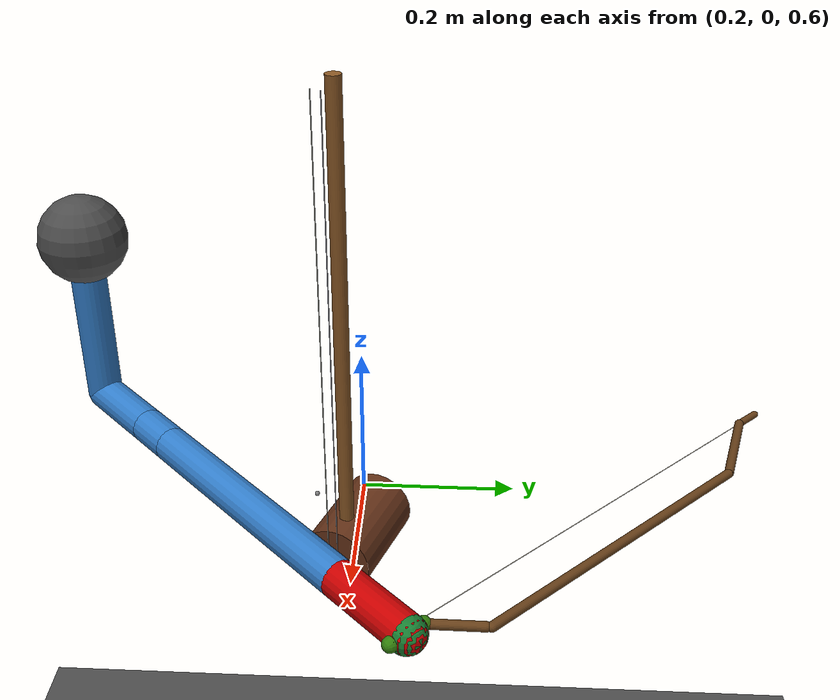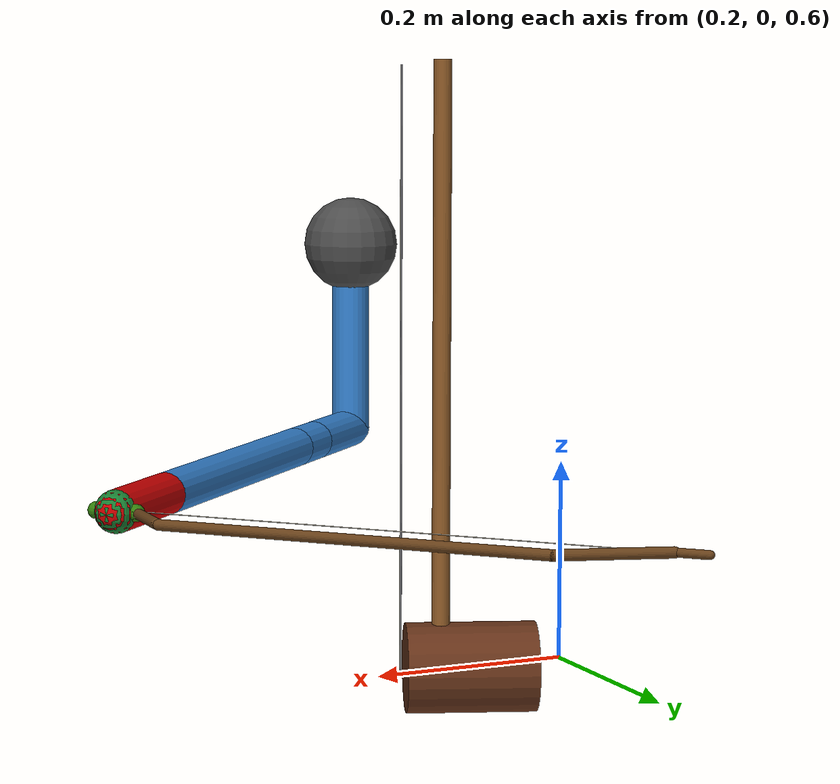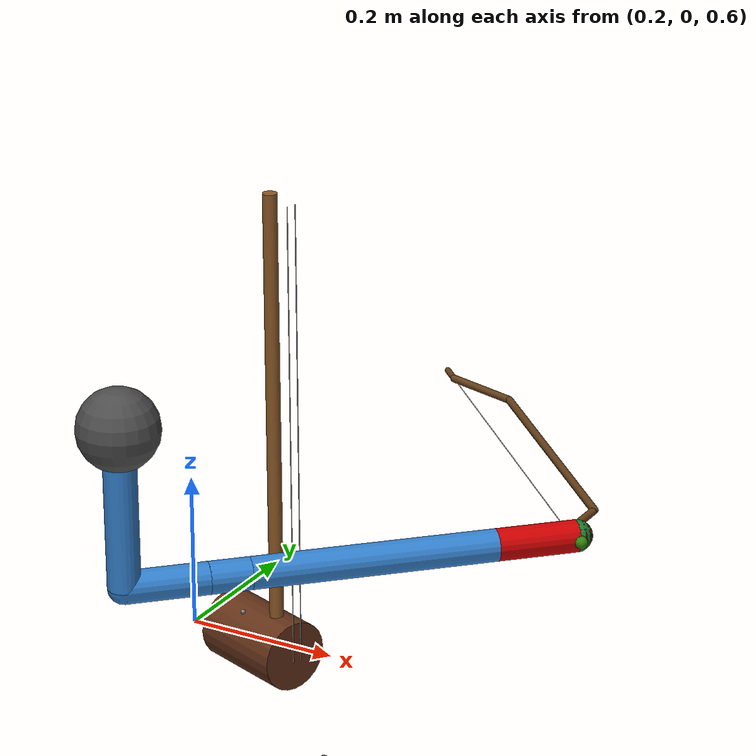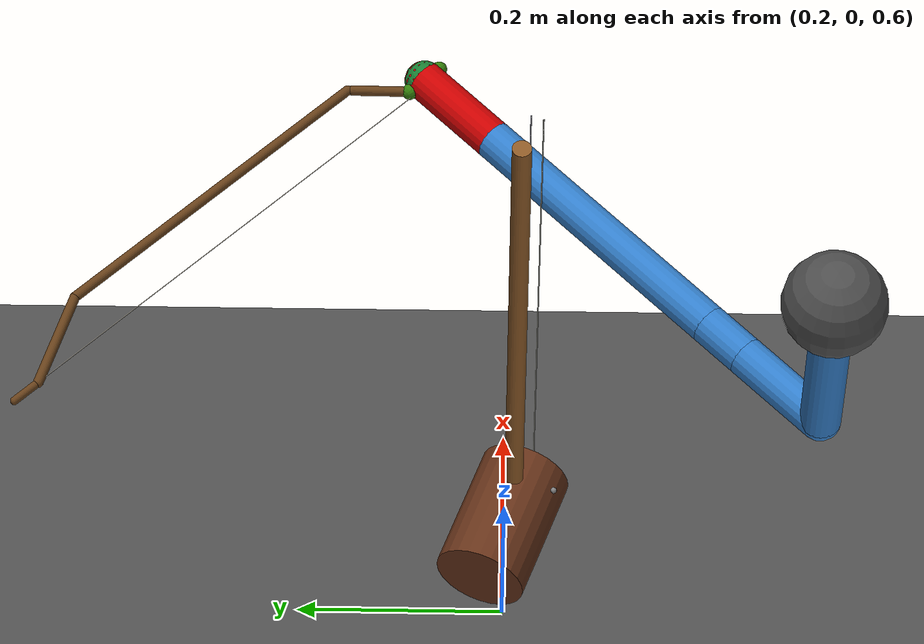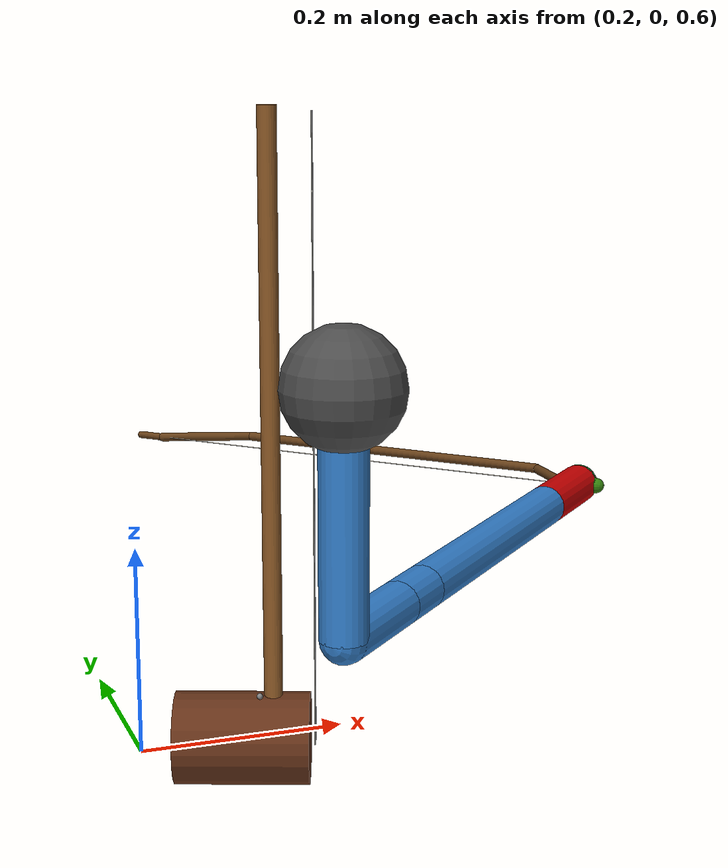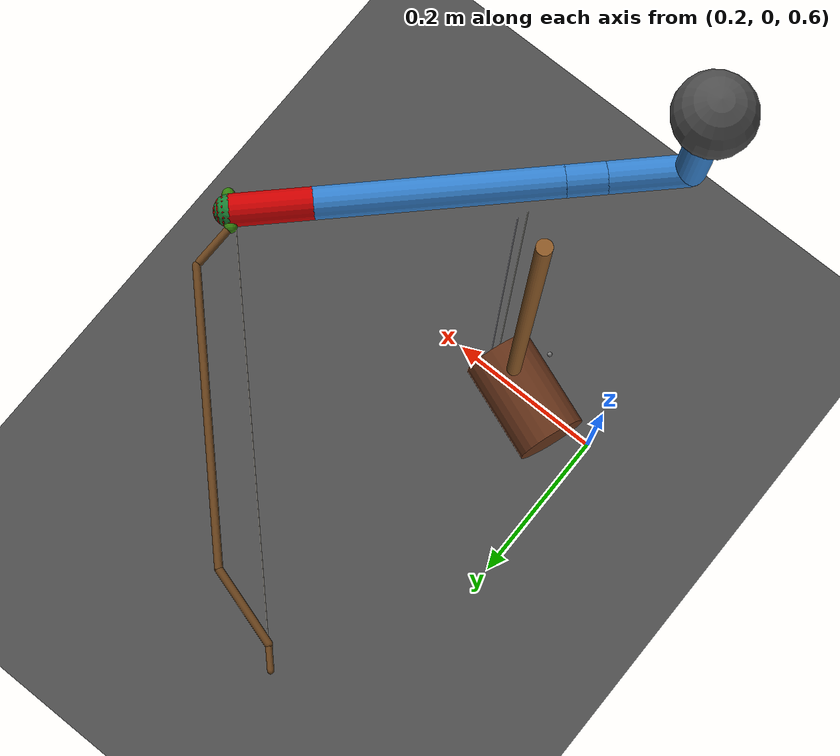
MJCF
<mujoco model="simple_arm_rigid">

    <compiler angle="radian" autolimits="true"/>

    <default>
        <default class="arm">
            <joint damping="0.5"/>
            <geom type="capsule"
                rgba="0.2 0.5 0.8 1"
                density="1000"
                size="0.02" contype="0" conaffinity="0"/>
            <position kp="5000" ctrlrange="-3.14 3.14"/>
        </default>

        <default class="bow_hair">
            <geom type="capsule" size="0.0004" rgba="0.95 0.92 0.85 1"
                  contype="2" conaffinity="1"
                  friction="1.2 0.02 0.001" solref="0.015 1" solimp="0.9 0.95 0.002" condim="3"/>
        </default>

        <default class="bow_hair_string_contact">
            <pair condim="3"
                  friction="0.4 0.4 0.02 0.001 0.001"
                  solref="0.015 4"
                  solimp="0.02 0.9 0.0035 0.5 2"
                  margin="0.004"
                  gap="0.02"/>
        </default>

        <default class="bow_stick_string_contact">
            <pair condim="3"
                  friction="0.3 0.3 0.005 0.0001 0.0001"
                  solref="0.01 1"
                  solimp="0.9 0.95 0.001"
                  margin="0.004"/>
        </default>
    </default>

    <worldbody>
        <body name="base" pos="0.3 -0.3 1" childclass="arm" euler="0 0 -2.3708">
            <geom type="sphere"
                  size="0.05 0.05"
                  rgba="0.3 0.3 0.3 1"/>

            <joint name="joint1"
                   type="hinge"
                   axis="0 1 0"/>
            <body name="link1" pos="0 0 0">
                <geom type="cylinder" fromto="0 0 0   0 0 -0.20"/>

                <body name="joint2_body" pos="0 0 -0.20">
                    <joint name="joint2"
                           type="hinge"
                           axis="0 1 0"/>
                    <geom fromto="0 0 0   -0.1 0 0"/>

                    <body name="joint5_body" pos="-0.1 0 0">
                    <joint name="joint5"
                           type="hinge"
                           axis="0 1 0"/>
                    <geom fromto="0 0 0   -0.05 0 0"/>

                        <body name="joint3_body" pos="-0.05 0 0">
                            <joint name="joint3"
                                type="hinge"
                                axis="0 0 1"/>
                            <geom fromto="0 0 0   -0.30 0 0"/>

                            <body name="joint4_body" pos="-0.30 0 0">
                                <joint name="joint4"
                                    type="hinge"
                                    axis="0 0 1"/>
                                <geom fromto="0 0 0   -0.1 0 0" rgba="0.8 0 0 1"/>

                                <body name="end_effector" pos="-0.1 0 0">
                                    <geom type="sphere"
                                        size="0.02"
                                        rgba="0.1 0.5 0.2 1"/>
                                    <body name="bow_frog" pos="0 0 0" euler="-1.5708 3.14 0">

                                        <joint name="bow_frog_hinge"
                                            type="hinge"
                                            axis="0 1 0"
                                            stiffness="500"
                                            springref="0"
                                            damping="2.7"
                                            limited="true"
                                            range="-0.0001 0.0001"/>

                                        <geom name="frog_geom" type="capsule" size="0.008 0.02" rgba="0.2 0.5 0.05 1" mass="0.02"/>

                                        <body name="bow_link_0" pos="0.005 0 0.025" zaxis="1 0 1">
                                            <geom name="bow_geom_0" type="capsule" fromto="0 0 0  0 0 0.05" size="0.005" rgba="0.4 0.25 0.1 1" mass="0.004"/>

                                            <body name="bow_link_1" pos="-0 0 0.055" zaxis="-1 0 1">
                                                <geom name="bow_geom_1" type="capsule" fromto="0 0 0  0 0 0.36" size="0.005" rgba="0.4 0.25 0.1 1" mass="0.008" contype="2" conaffinity="1"/>

                                                <body name="bow_link_7" pos="0 0 0.36">
                                                    <geom name="bow_geom_7" type="capsule" fromto="0 0 0  -0.05 0 0.09" size="0.005" rgba="0.4 0.25 0.1 1" mass="0.008"/>

                                                    <body name="bow_tip" pos="-0.05 0 0.09">
                                                        <geom name="bow_tip_geom" type="capsule" fromto="0 0 0  0 0 0.03" size="0.004" rgba="0.4 0.25 0.1 1" mass="0.004"/>
                                                        <site name="bow_tip_site" pos="0 0 0.03" size="0.003"/>

                                                        <body name="bow_hair" pos="0 0 0">
                                                            <geom name="bow_hair_geom" class="bow_hair" fromto="0 0 0  0 0 -0.5" mass="0.002016"/>
                                                            <site name="bow_hair_frog_site" pos="0 0 0" size="0.0005"/>
                                                            <site name="bow_hair_tip_site" pos="0 0 -0.5" size="0.0005"/>
                                                        </body>
                                                    </body>
                                                </body>
                                            </body>
                                        </body>

                                        <site name="bow_frog_site" pos="0 0 -0.01" size="0.003"/>
                                    </body>

                                </body>

                            </body>

                        </body>

                    </body>

                </body>

            </body>

        </body>

    </worldbody>

    <actuator>
        <general joint="joint1" ctrllimited="true" ctrlrange="-3.14 3.14" forcerange="-8 8"
                 dyntype="filter" dynprm="0.05 0 0"
                 gaintype="fixed" gainprm="5000 0 0"
                 biastype="affine" biasprm="0 -5000 -55"/>
        <general joint="joint2" ctrllimited="true" ctrlrange="-3.14 3.14" forcerange="-4 4"
                 dyntype="filter" dynprm="0.05 0 0"
                 gaintype="fixed" gainprm="5000 0 0"
                 biastype="affine" biasprm="0 -5000 -38"/>
        <general joint="joint5" ctrllimited="true" ctrlrange="-3.14 3.14" forcerange="-2 2"
                 dyntype="filter" dynprm="0.03 0 0"
                 gaintype="fixed" gainprm="5000 0 0"
                 biastype="affine" biasprm="0 -5000 -50"/>
        <general joint="joint3" ctrllimited="true" ctrlrange="-3.14 3.14" forcerange="-3 3"
                 dyntype="filter" dynprm="0.04 0 0"
                 gaintype="fixed" gainprm="5000 0 0"
                 biastype="affine" biasprm="0 -5000 -34"/>
        <general joint="joint4" ctrllimited="true" ctrlrange="-3.14 3.14" forcerange="-1 1"
                 dyntype="filter" dynprm="0.03 0 0"
                 gaintype="fixed" gainprm="5000 0 0"
                 biastype="affine" biasprm="0 -5000 -12"/>
    </actuator>

    <include file="erhu.xml"/>

    <contact>
        <pair name="bow_hair_string_D_pair" class="bow_hair_string_contact"
              geom1="bow_hair_geom" geom2="string_D_geom"/>
        <pair name="bow_hair_string_A_pair" class="bow_hair_string_contact"
              geom1="bow_hair_geom" geom2="string_A_geom"/>

        <!-- Anti-tunneling backstop pairs: the wood bow should never cross
             the strings, only the hair should touch them. -->
        <pair name="bow_stick0_string_A_pair" class="bow_stick_string_contact"
              geom1="bow_geom_0" geom2="string_A_geom"/>
        <pair name="bow_stick7_string_A_pair" class="bow_stick_string_contact"
              geom1="bow_geom_7" geom2="string_A_geom"/>

    </contact>

</mujoco>

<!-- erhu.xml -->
<mujoco model="erhu">
  <compiler angle="radian" autolimits="true"/>
  <option timestep="0.002" gravity="0 0 -9.8" integrator="implicitfast">
    <flag contact="enable"/>
  </option>

  <default>
    <geom density="750" solref="0.004 1" solimp="0.9 0.95 0.001" contype="1" conaffinity="2"/>
    <joint damping="0.01"/>
    <default class="string_contact">
      <geom friction="1.2 0.02 0.001" solref="0.025 4" solimp="0.9 0.95 0.001" condim="3"/>
    </default>
  </default>

  <worldbody>
    <light pos="0 0 2" dir="0 0 -1" diffuse="1 1 1"/>
    <geom name="floor" type="plane" size="2 2 0.1" rgba="0.3 0.3 0.3 1" contype="0" conaffinity="0"/>

    <!-- ============================ ERHU BODY ============================ -->
    <body name="erhu_root" pos="0.3 0 0.6" euler="0 0 -0.35">
      <!--joint name="erhu_root_free" type="free"/-->

      <body name="sound_box" pos="0 0 0">
        <geom name="sound_box_geom" type="cylinder" size="0.045 0.065"
              rgba="0.4 0.2 0.1 1" mass="0.35" zaxis="1 0 0"/>
        <site name="tailpiece" pos="0.02 -0.045 0.06" size="0.003"/>

        <body name="neck" pos="0.03 0 0">
          <geom name="neck_geom" type="cylinder" size="0.009 0.30"
                pos="0 0 0.30" rgba="0.55 0.35 0.15 1" mass="0.12"/>
        </body>
      </body>

      <body name="string_D" pos="0.07 -0.006 0.595">
        <geom name="string_D_geom" type="cylinder" size="0.0006 0.3"
              pos="0 0 -0.3" rgba="0.9 0.9 0.85 1" mass="0.003"
              class="string_contact"/>
      </body>

      <body name="string_A" pos="0.07 0.006 0.595">
        <geom name="string_A_geom" type="cylinder" size="0.0006 0.3"
              pos="0 0 -0.3" rgba="0.85 0.85 0.9 1" mass="0.0022"
              class="string_contact"/>
      </body>
          </body>
  </worldbody>

  <sensor>
    <force name="bow_arm_contact" site="bow_frog_site"/>
  </sensor>
</mujoco>
